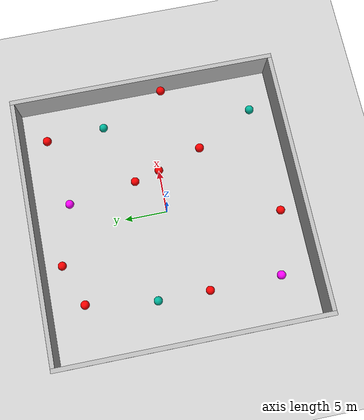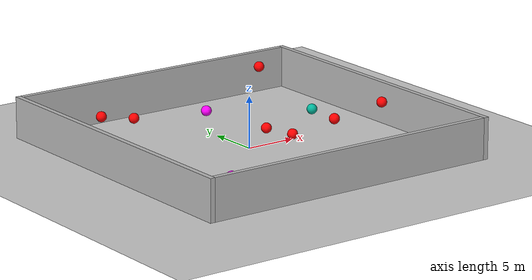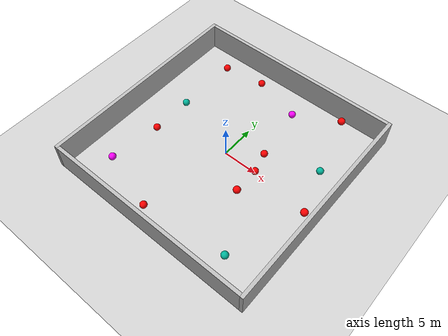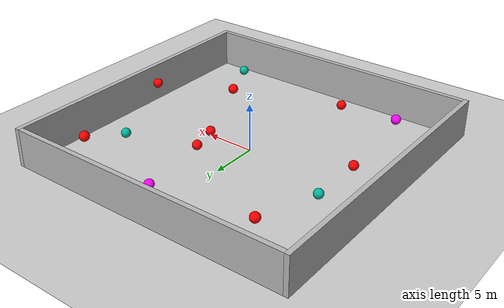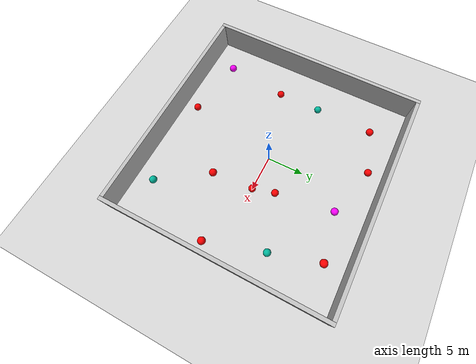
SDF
<sdf version="1.6">
 <world name="default">
  <model name="ground_plane">
   <static>1</static>
   <link name="link">
    <collision name="collision">
     <geometry><plane><normal>0 0 1</normal><size>100 100</size></plane></geometry>
     <surface><friction><ode><mu>100</mu><mu2>50</mu2></ode></friction></surface>
    </collision>
    <visual name="visual">
     <cast_shadows>0</cast_shadows>
     <geometry><plane><normal>0 0 1</normal><size>100 100</size></plane></geometry>
     <material>
      <script><uri>file://media/materials/scripts/gazebo.material</uri><name>Gazebo/Grey</name></script>
     </material>
    </visual>
   </link>
  </model>
  <light name="sun" type="directional">
   <pose>0 0 10 0 -0 0</pose>
   <diffuse>0.8 0.8 0.8 1</diffuse>
   <specular>0.1 0.1 0.1 1</specular>
   <attenuation>
    <range>1000</range>
    <constant>0.9</constant>
    <linear>0.01</linear>
    <quadratic>0.001</quadratic>
   </attenuation>
   <direction>-0.5 0.5 -1</direction>
  </light>
  <model name="north_wall">
   <pose>15.25 0 2 0 -0 0</pose>
   <static>1</static>
   <link name="body">
    <collision name="colN"><geometry><box><size>0.5 31 4</size></box></geometry></collision>
    <visual name="visual"><geometry><box><size>0.5 31 4</size></box></geometry></visual>
   </link>
  </model>
  <model name="south_wall">
   <pose>-15.25 0 2 0 -0 0</pose>
   <static>1</static>
   <link name="body">
    <collision name="colS"><geometry><box><size>0.5 31 4</size></box></geometry></collision>
    <visual name="visual"><geometry><box><size>0.5 31 4</size></box></geometry></visual>
   </link>
  </model>
  <model name="west_wall">
   <pose>0 15.25 2 0 -0 0</pose>
   <static>1</static>
   <link name="body">
    <collision name="colW"><geometry><box><size>30 0.5 4</size></box></geometry></collision>
    <visual name="visual"><geometry><box><size>30 0.5 4</size></box></geometry></visual>
   </link>
  </model>
  <model name="east_wall">
   <pose>0 -15.25 2 0 -0 0</pose>
   <static>1</static>
   <link name="body">
    <collision name="colE"><geometry><box><size>30 0.5 4</size></box></geometry></collision>
    <visual name="visual"><geometry><box><size>30 0.5 4</size></box></geometry></visual>
   </link>
  </model>
  <model name="Target_1">
   <link name="link">
    <inertial>
     <mass>1</mass>
     <inertia><ixx>0.1</ixx><ixy>0</ixy><ixz>0</ixz><iyy>0.1</iyy><iyz>0</iyz><izz>0.1</izz></inertia>
    </inertial>
    <gravity>0</gravity>
    <visual name="visual">
     <geometry><sphere><radius>0.5</radius></sphere></geometry>
     <material>
      <script><name>Gazebo/Grey</name><uri>file://media/materials/scripts/gazebo.material</uri></script>
      <ambient>1 0 0 1</ambient>
      <diffuse>1 0 0 1</diffuse>
      <specular>0.01 0.01 0.01 1</specular>
      <emissive>0 0 0 1</emissive>
      <shader type="vertex"><normal_map>__default__</normal_map></shader>
     </material>
    </visual>
    <collision name="collision">
     <geometry><sphere><radius>0.5</radius></sphere></geometry>
     <surface>
      <friction>
       <ode><mu>1</mu><mu2>1</mu2><fdir1>0 0 0</fdir1><slip1>0</slip1><slip2>0</slip2></ode>
       <torsional>
        <coefficient>1</coefficient>
        <patch_radius>0</patch_radius>
        <surface_radius>0</surface_radius>
        <use_patch_radius>1</use_patch_radius>
        <ode><slip>0</slip></ode>
       </torsional>
      </friction>
      <bounce><restitution_coefficient>0</restitution_coefficient><threshold>1e+06</threshold></bounce>
      <contact>
       <collide_without_contact>0</collide_without_contact>
       <collide_without_contact_bitmask>1</collide_without_contact_bitmask>
       <collide_bitmask>1</collide_bitmask>
       <ode>
        <soft_cfm>0</soft_cfm>
        <soft_erp>0.2</soft_erp>
        <kp>1e+13</kp>
        <kd>1</kd>
        <max_vel>0.01</max_vel>
        <min_depth>0</min_depth>
       </ode>
       <bullet>
        <split_impulse>1</split_impulse>
        <split_impulse_penetration_threshold>-0.01</split_impulse_penetration_threshold>
        <soft_cfm>0</soft_cfm>
        <soft_erp>0.2</soft_erp>
        <kp>1e+13</kp>
        <kd>1</kd>
       </bullet>
      </contact>
     </surface>
    </collision>
   </link>
   <static>0</static>
   <pose>5 0 0.5 0 -0 0</pose>
  </model>
  <model name="Target_2">
   <link name="link">
    <inertial>
     <mass>1</mass>
     <inertia><ixx>0.1</ixx><ixy>0</ixy><ixz>0</ixz><iyy>0.1</iyy><iyz>0</iyz><izz>0.1</izz></inertia>
    </inertial>
    <gravity>0</gravity>
    <visual name="visual">
     <geometry><sphere><radius>0.5</radius></sphere></geometry>
     <material>
      <script><name>Gazebo/Grey</name><uri>file://media/materials/scripts/gazebo.material</uri></script>
      <ambient>1 0 0 1</ambient>
      <diffuse>1 0 0 1</diffuse>
      <specular>0.01 0.01 0.01 1</specular>
      <emissive>0 0 0 1</emissive>
      <shader type="vertex"><normal_map>__default__</normal_map></shader>
     </material>
    </visual>
    <collision name="collision">
     <geometry><sphere><radius>0.5</radius></sphere></geometry>
     <surface>
      <friction>
       <ode><mu>1</mu><mu2>1</mu2><fdir1>0 0 0</fdir1><slip1>0</slip1><slip2>0</slip2></ode>
       <torsional>
        <coefficient>1</coefficient>
        <patch_radius>0</patch_radius>
        <surface_radius>0</surface_radius>
        <use_patch_radius>1</use_patch_radius>
        <ode><slip>0</slip></ode>
       </torsional>
      </friction>
      <bounce><restitution_coefficient>0</restitution_coefficient><threshold>1e+06</threshold></bounce>
      <contact>
       <collide_without_contact>0</collide_without_contact>
       <collide_without_contact_bitmask>1</collide_without_contact_bitmask>
       <collide_bitmask>1</collide_bitmask>
       <ode>
        <soft_cfm>0</soft_cfm>
        <soft_erp>0.2</soft_erp>
        <kp>1e+13</kp>
        <kd>1</kd>
        <max_vel>0.01</max_vel>
        <min_depth>0</min_depth>
       </ode>
       <bullet>
        <split_impulse>1</split_impulse>
        <split_impulse_penetration_threshold>-0.01</split_impulse_penetration_threshold>
        <soft_cfm>0</soft_cfm>
        <soft_erp>0.2</soft_erp>
        <kp>1e+13</kp>
        <kd>1</kd>
       </bullet>
      </contact>
     </surface>
    </collision>
   </link>
   <static>0</static>
   <pose>-4 13 0.5 0 -0 0</pose>
  </model>
  <model name="Target_3">
   <link name="link">
    <inertial>
     <mass>1</mass>
     <inertia><ixx>0.1</ixx><ixy>0</ixy><ixz>0</ixz><iyy>0.1</iyy><iyz>0</iyz><izz>0.1</izz></inertia>
    </inertial>
    <gravity>0</gravity>
    <visual name="visual">
     <geometry><sphere><radius>0.5</radius></sphere></geometry>
     <material>
      <script><name>Gazebo/Grey</name><uri>file://media/materials/scripts/gazebo.material</uri></script>
      <ambient>1 0 0 1</ambient>
      <diffuse>1 0 0 1</diffuse>
      <specular>0.01 0.01 0.01 1</specular>
      <emissive>0 0 0 1</emissive>
      <shader type="vertex"><normal_map>__default__</normal_map></shader>
     </material>
    </visual>
    <collision name="collision">
     <geometry><sphere><radius>0.5</radius></sphere></geometry>
     <surface>
      <friction>
       <ode><mu>1</mu><mu2>1</mu2><fdir1>0 0 0</fdir1><slip1>0</slip1><slip2>0</slip2></ode>
       <torsional>
        <coefficient>1</coefficient>
        <patch_radius>0</patch_radius>
        <surface_radius>0</surface_radius>
        <use_patch_radius>1</use_patch_radius>
        <ode><slip>0</slip></ode>
       </torsional>
      </friction>
      <bounce><restitution_coefficient>0</restitution_coefficient><threshold>1e+06</threshold></bounce>
      <contact>
       <collide_without_contact>0</collide_without_contact>
       <collide_without_contact_bitmask>1</collide_without_contact_bitmask>
       <collide_bitmask>1</collide_bitmask>
       <ode>
        <soft_cfm>0</soft_cfm>
        <soft_erp>0.2</soft_erp>
        <kp>1e+13</kp>
        <kd>1</kd>
        <max_vel>0.01</max_vel>
        <min_depth>0</min_depth>
       </ode>
       <bullet>
        <split_impulse>1</split_impulse>
        <split_impulse_penetration_threshold>-0.01</split_impulse_penetration_threshold>
        <soft_cfm>0</soft_cfm>
        <soft_erp>0.2</soft_erp>
        <kp>1e+13</kp>
        <kd>1</kd>
       </bullet>
      </contact>
     </surface>
    </collision>
   </link>
   <static>0</static>
   <pose>10 12 3.5 0 -0 0</pose>
  </model>
  <model name="Target_4">
   <link name="link">
    <inertial>
     <mass>1</mass>
     <inertia><ixx>0.1</ixx><ixy>0</ixy><ixz>0</ixz><iyy>0.1</iyy><iyz>0</iyz><izz>0.1</izz></inertia>
    </inertial>
    <gravity>0</gravity>
    <visual name="visual">
     <geometry><sphere><radius>0.5</radius></sphere></geometry>
     <material>
      <script><name>Gazebo/Grey</name><uri>file://media/materials/scripts/gazebo.material</uri></script>
      <ambient>1 0 0 1</ambient>
      <diffuse>1 0 0 1</diffuse>
      <specular>0.01 0.01 0.01 1</specular>
      <emissive>0 0 0 1</emissive>
      <shader type="vertex"><normal_map>__default__</normal_map></shader>
     </material>
    </visual>
    <collision name="collision">
     <geometry><sphere><radius>0.5</radius></sphere></geometry>
     <surface>
      <friction>
       <ode><mu>1</mu><mu2>1</mu2><fdir1>0 0 0</fdir1><slip1>0</slip1><slip2>0</slip2></ode>
       <torsional>
        <coefficient>1</coefficient>
        <patch_radius>0</patch_radius>
        <surface_radius>0</surface_radius>
        <use_patch_radius>1</use_patch_radius>
        <ode><slip>0</slip></ode>
       </torsional>
      </friction>
      <bounce><restitution_coefficient>0</restitution_coefficient><threshold>1e+06</threshold></bounce>
      <contact>
       <collide_without_contact>0</collide_without_contact>
       <collide_without_contact_bitmask>1</collide_without_contact_bitmask>
       <collide_bitmask>1</collide_bitmask>
       <ode>
        <soft_cfm>0</soft_cfm>
        <soft_erp>0.2</soft_erp>
        <kp>1e+13</kp>
        <kd>1</kd>
        <max_vel>0.01</max_vel>
        <min_depth>0</min_depth>
       </ode>
       <bullet>
        <split_impulse>1</split_impulse>
        <split_impulse_penetration_threshold>-0.01</split_impulse_penetration_threshold>
        <soft_cfm>0</soft_cfm>
        <soft_erp>0.2</soft_erp>
        <kp>1e+13</kp>
        <kd>1</kd>
       </bullet>
      </contact>
     </surface>
    </collision>
   </link>
   <static>0</static>
   <pose>6 -5 3 0 -0 0</pose>
  </model>
  <model name="Target_5">
   <link name="link">
    <inertial>
     <mass>1</mass>
     <inertia><ixx>0.1</ixx><ixy>0</ixy><ixz>0</ixz><iyy>0.1</iyy><iyz>0</iyz><izz>0.1</izz></inertia>
    </inertial>
    <gravity>0</gravity>
    <visual name="visual">
     <geometry><sphere><radius>0.5</radius></sphere></geometry>
     <material>
      <script><name>Gazebo/Grey</name><uri>file://media/materials/scripts/gazebo.material</uri></script>
      <ambient>1 0 0 1</ambient>
      <diffuse>1 0 0 1</diffuse>
      <specular>0.01 0.01 0.01 1</specular>
      <emissive>0 0 0 1</emissive>
      <shader type="vertex"><normal_map>__default__</normal_map></shader>
     </material>
    </visual>
    <collision name="collision">
     <geometry><sphere><radius>0.5</radius></sphere></geometry>
     <surface>
      <friction>
       <ode><mu>1</mu><mu2>1</mu2><fdir1>0 0 0</fdir1><slip1>0</slip1><slip2>0</slip2></ode>
       <torsional>
        <coefficient>1</coefficient>
        <patch_radius>0</patch_radius>
        <surface_radius>0</surface_radius>
        <use_patch_radius>1</use_patch_radius>
        <ode><slip>0</slip></ode>
       </torsional>
      </friction>
      <bounce><restitution_coefficient>0</restitution_coefficient><threshold>1e+06</threshold></bounce>
      <contact>
       <collide_without_contact>0</collide_without_contact>
       <collide_without_contact_bitmask>1</collide_without_contact_bitmask>
       <collide_bitmask>1</collide_bitmask>
       <ode>
        <soft_cfm>0</soft_cfm>
        <soft_erp>0.2</soft_erp>
        <kp>1e+13</kp>
        <kd>1</kd>
        <max_vel>0.01</max_vel>
        <min_depth>0</min_depth>
       </ode>
       <bullet>
        <split_impulse>1</split_impulse>
        <split_impulse_penetration_threshold>-0.01</split_impulse_penetration_threshold>
        <soft_cfm>0</soft_cfm>
        <soft_erp>0.2</soft_erp>
        <kp>1e+13</kp>
        <kd>1</kd>
       </bullet>
      </contact>
     </surface>
    </collision>
   </link>
   <static>0</static>
   <pose>-10 -3 0.5 0 -0 0</pose>
  </model>
  <model name="Target_6">
   <link name="link">
    <inertial>
     <mass>1</mass>
     <inertia><ixx>0.1</ixx><ixy>0</ixy><ixz>0</ixz><iyy>0.1</iyy><iyz>0</iyz><izz>0.1</izz></inertia>
    </inertial>
    <gravity>0</gravity>
    <visual name="visual">
     <geometry><sphere><radius>0.5</radius></sphere></geometry>
     <material>
      <script><name>Gazebo/Grey</name><uri>file://media/materials/scripts/gazebo.material</uri></script>
      <ambient>1 0 0 1</ambient>
      <diffuse>1 0 0 1</diffuse>
      <specular>0.01 0.01 0.01 1</specular>
      <emissive>0 0 0 1</emissive>
      <shader type="vertex"><normal_map>__default__</normal_map></shader>
     </material>
    </visual>
    <collision name="collision">
     <geometry><sphere><radius>0.5</radius></sphere></geometry>
     <surface>
      <friction>
       <ode><mu>1</mu><mu2>1</mu2><fdir1>0 0 0</fdir1><slip1>0</slip1><slip2>0</slip2></ode>
       <torsional>
        <coefficient>1</coefficient>
        <patch_radius>0</patch_radius>
        <surface_radius>0</surface_radius>
        <use_patch_radius>1</use_patch_radius>
        <ode><slip>0</slip></ode>
       </torsional>
      </friction>
      <bounce><restitution_coefficient>0</restitution_coefficient><threshold>1e+06</threshold></bounce>
      <contact>
       <collide_without_contact>0</collide_without_contact>
       <collide_without_contact_bitmask>1</collide_without_contact_bitmask>
       <collide_bitmask>1</collide_bitmask>
       <ode>
        <soft_cfm>0</soft_cfm>
        <soft_erp>0.2</soft_erp>
        <kp>1e+13</kp>
        <kd>1</kd>
        <max_vel>0.01</max_vel>
        <min_depth>0</min_depth>
       </ode>
       <bullet>
        <split_impulse>1</split_impulse>
        <split_impulse_penetration_threshold>-0.01</split_impulse_penetration_threshold>
        <soft_cfm>0</soft_cfm>
        <soft_erp>0.2</soft_erp>
        <kp>1e+13</kp>
        <kd>1</kd>
       </bullet>
      </contact>
     </surface>
    </collision>
   </link>
   <static>0</static>
   <pose>14 -2 2.5 0 -0 0</pose>
  </model>
  <gravity>0 0 -9.8</gravity>
  <magnetic_field>6e-06 2.3e-05 -4.2e-05</magnetic_field>
  <atmosphere type="adiabatic"/>
  <physics name="default_physics" default="0" type="ode">
   <max_step_size>0.001</max_step_size>
   <real_time_factor>1</real_time_factor>
   <real_time_update_rate>1000</real_time_update_rate>
  </physics>
  <scene><ambient>0.4 0.4 0.4 1</ambient><background>0.7 0.7 0.7 1</background><shadows>1</shadows></scene>
  <spherical_coordinates>
   <surface_model>EARTH_WGS84</surface_model>
   <latitude_deg>0</latitude_deg>
   <longitude_deg>0</longitude_deg>
   <elevation>0</elevation>
   <heading_deg>0</heading_deg>
  </spherical_coordinates>
  <model name="unit_sphere_Green">
   <link name="link">
    <inertial>
     <mass>1</mass>
     <inertia><ixx>0.1</ixx><ixy>0</ixy><ixz>0</ixz><iyy>0.1</iyy><iyz>0</iyz><izz>0.1</izz></inertia>
    </inertial>
    <visual name="visual">
     <geometry><sphere><radius>0.5</radius></sphere></geometry>
     <material>
      <script><name>Gazebo/Grey</name><uri>file://media/materials/scripts/gazebo.material</uri></script>
      <ambient>0 1 0 1</ambient>
      <diffuse>0 0.7 0.6 1</diffuse>
      <specular>0.01 0.01 0.01 1</specular>
      <emissive>0 0 0 1</emissive>
      <shader type="vertex"><normal_map>__default__</normal_map></shader>
     </material>
    </visual>
    <collision name="collision">
     <geometry><sphere><radius>0.5</radius></sphere></geometry>
     <surface>
      <friction>
       <ode><mu>1</mu><mu2>1</mu2><fdir1>0 0 0</fdir1><slip1>0</slip1><slip2>0</slip2></ode>
       <torsional>
        <coefficient>1</coefficient>
        <patch_radius>0</patch_radius>
        <surface_radius>0</surface_radius>
        <use_patch_radius>1</use_patch_radius>
        <ode><slip>0</slip></ode>
       </torsional>
      </friction>
      <bounce><restitution_coefficient>0</restitution_coefficient><threshold>1e+06</threshold></bounce>
      <contact>
       <collide_without_contact>0</collide_without_contact>
       <collide_without_contact_bitmask>1</collide_without_contact_bitmask>
       <collide_bitmask>1</collide_bitmask>
       <ode>
        <soft_cfm>0</soft_cfm>
        <soft_erp>0.2</soft_erp>
        <kp>1e+13</kp>
        <kd>1</kd>
        <max_vel>0.01</max_vel>
        <min_depth>0</min_depth>
       </ode>
       <bullet>
        <split_impulse>1</split_impulse>
        <split_impulse_penetration_threshold>-0.01</split_impulse_penetration_threshold>
        <soft_cfm>0</soft_cfm>
        <soft_erp>0.2</soft_erp>
        <kp>1e+13</kp>
        <kd>1</kd>
       </bullet>
      </contact>
     </surface>
    </collision>
   </link>
   <static>0</static>
   <pose>11.5 5.5 0.5 0 -0 0</pose>
  </model>
  <model name="unit_sphere_Green_0">
   <link name="unit_sphere_Green_0::link">
    <inertial>
     <mass>1</mass>
     <inertia><ixx>0.1</ixx><ixy>0</ixy><ixz>0</ixz><iyy>0.1</iyy><iyz>0</iyz><izz>0.1</izz></inertia>
    </inertial>
    <gravity>0</gravity>
    <visual name="visual">
     <geometry><sphere><radius>0.5</radius></sphere></geometry>
     <material>
      <script><name>Gazebo/Grey</name><uri>file://media/materials/scripts/gazebo.material</uri></script>
      <ambient>0 1 0 1</ambient>
      <diffuse>0 0.7 0.6 1</diffuse>
      <specular>0.01 0.01 0.01 1</specular>
      <emissive>0 0 0 1</emissive>
      <shader type="vertex"><normal_map>__default__</normal_map></shader>
     </material>
    </visual>
    <collision name="collision">
     <geometry><sphere><radius>0.5</radius></sphere></geometry>
     <surface>
      <friction>
       <ode><mu>1</mu><mu2>1</mu2><fdir1>0 0 0</fdir1><slip1>0</slip1><slip2>0</slip2></ode>
       <torsional>
        <coefficient>1</coefficient>
        <patch_radius>0</patch_radius>
        <surface_radius>0</surface_radius>
        <use_patch_radius>1</use_patch_radius>
        <ode><slip>0</slip></ode>
       </torsional>
      </friction>
      <bounce><restitution_coefficient>0</restitution_coefficient><threshold>1e+06</threshold></bounce>
      <contact>
       <collide_without_contact>0</collide_without_contact>
       <collide_without_contact_bitmask>1</collide_without_contact_bitmask>
       <collide_bitmask>1</collide_bitmask>
       <ode>
        <soft_cfm>0</soft_cfm>
        <soft_erp>0.2</soft_erp>
        <kp>1e+13</kp>
        <kd>1</kd>
        <max_vel>0.01</max_vel>
        <min_depth>0</min_depth>
       </ode>
       <bullet>
        <split_impulse>1</split_impulse>
        <split_impulse_penetration_threshold>-0.01</split_impulse_penetration_threshold>
        <soft_cfm>0</soft_cfm>
        <soft_erp>0.2</soft_erp>
        <kp>1e+13</kp>
        <kd>1</kd>
       </bullet>
      </contact>
     </surface>
    </collision>
   </link>
   <static>0</static>
   <pose>10 -12 1.5 0 -0 0</pose>
  </model>
  <model name="unit_sphere_Green_1">
   <link name="link">
    <inertial>
     <mass>1</mass>
     <inertia><ixx>0.1</ixx><ixy>0</ixy><ixz>0</ixz><iyy>0.1</iyy><iyz>0</iyz><izz>0.1</izz></inertia>
    </inertial>
    <visual name="visual">
     <geometry><sphere><radius>0.5</radius></sphere></geometry>
     <material>
      <script><name>Gazebo/Grey</name><uri>file://media/materials/scripts/gazebo.material</uri></script>
      <ambient>0 1 0 1</ambient>
      <diffuse>0 0.7 0.6 1</diffuse>
      <specular>0.01 0.01 0.01 1</specular>
      <emissive>0 0 0 1</emissive>
      <shader type="vertex"><normal_map>__default__</normal_map></shader>
     </material>
    </visual>
    <collision name="collision">
     <geometry><sphere><radius>0.5</radius></sphere></geometry>
     <surface>
      <friction>
       <ode><mu>1</mu><mu2>1</mu2><fdir1>0 0 0</fdir1><slip1>0</slip1><slip2>0</slip2></ode>
       <torsional>
        <coefficient>1</coefficient>
        <patch_radius>0</patch_radius>
        <surface_radius>0</surface_radius>
        <use_patch_radius>1</use_patch_radius>
        <ode><slip>0</slip></ode>
       </torsional>
      </friction>
      <bounce><restitution_coefficient>0</restitution_coefficient><threshold>1e+06</threshold></bounce>
      <contact>
       <collide_without_contact>0</collide_without_contact>
       <collide_without_contact_bitmask>1</collide_without_contact_bitmask>
       <collide_bitmask>1</collide_bitmask>
       <ode>
        <soft_cfm>0</soft_cfm>
        <soft_erp>0.2</soft_erp>
        <kp>1e+13</kp>
        <kd>1</kd>
        <max_vel>0.01</max_vel>
        <min_depth>0</min_depth>
       </ode>
       <bullet>
        <split_impulse>1</split_impulse>
        <split_impulse_penetration_threshold>-0.01</split_impulse_penetration_threshold>
        <soft_cfm>0</soft_cfm>
        <soft_erp>0.2</soft_erp>
        <kp>1e+13</kp>
        <kd>1</kd>
       </bullet>
      </contact>
     </surface>
    </collision>
   </link>
   <static>0</static>
   <pose>-10 3 0.5 0 -0 0</pose>
  </model>
  <model name="unit_sphere_Blue">
   <link name="unit_sphere_Blue::link">
    <inertial>
     <mass>1</mass>
     <inertia><ixx>0.1</ixx><ixy>0</ixy><ixz>0</ixz><iyy>0.1</iyy><iyz>0</iyz><izz>0.1</izz></inertia>
    </inertial>
    <gravity>0</gravity>
    <visual name="ModelPreview_7::link::visual_1">
     <geometry><sphere><radius>0.5</radius></sphere></geometry>
     <material>
      <script><name>Gazebo/Grey</name><uri>file://media/materials/scripts/gazebo.material</uri></script>
      <ambient>1 0 1 1</ambient>
      <diffuse>1 0 0 1</diffuse>
      <specular>0.01 0.01 0.01 1</specular>
      <emissive>0 0 0 1</emissive>
      <shader type="vertex"><normal_map>__default__</normal_map></shader>
     </material>
    </visual>
    <visual name="visual">
     <geometry><sphere><radius>0.5</radius></sphere></geometry>
     <material>
      <script><name>Gazebo/Grey</name><uri>file://media/materials/scripts/gazebo.material</uri></script>
      <ambient>0 0 1 1</ambient>
      <diffuse>0 0 1 1</diffuse>
      <specular>0.01 0.01 0.01 1</specular>
      <emissive>0 0 0 1</emissive>
      <shader type="vertex"><normal_map>__default__</normal_map></shader>
     </material>
    </visual>
    <visual name="ModelPreview_7::link::visual_2">
     <geometry><sphere><radius>0.5</radius></sphere></geometry>
     <material>
      <script><name>Gazebo/Grey</name><uri>file://media/materials/scripts/gazebo.material</uri></script>
      <ambient>0 0 1 1</ambient>
      <diffuse>0 0 0 1</diffuse>
      <specular>0.01 0.01 0.01 1</specular>
      <emissive>0 0 0 1</emissive>
      <shader type="vertex"><normal_map>__default__</normal_map></shader>
     </material>
    </visual>
    <collision name="collision">
     <geometry><sphere><radius>0.5</radius></sphere></geometry>
     <surface>
      <friction>
       <ode><mu>1</mu><mu2>1</mu2><fdir1>0 0 0</fdir1><slip1>0</slip1><slip2>0</slip2></ode>
       <torsional>
        <coefficient>1</coefficient>
        <patch_radius>0</patch_radius>
        <surface_radius>0</surface_radius>
        <use_patch_radius>1</use_patch_radius>
        <ode><slip>0</slip></ode>
       </torsional>
      </friction>
      <bounce><restitution_coefficient>0</restitution_coefficient><threshold>1e+06</threshold></bounce>
      <contact>
       <collide_without_contact>0</collide_without_contact>
       <collide_without_contact_bitmask>1</collide_without_contact_bitmask>
       <collide_bitmask>1</collide_bitmask>
       <ode>
        <soft_cfm>0</soft_cfm>
        <soft_erp>0.2</soft_erp>
        <kp>1e+13</kp>
        <kd>1</kd>
        <max_vel>0.01</max_vel>
        <min_depth>0</min_depth>
       </ode>
       <bullet>
        <split_impulse>1</split_impulse>
        <split_impulse_penetration_threshold>-0.01</split_impulse_penetration_threshold>
        <soft_cfm>0</soft_cfm>
        <soft_erp>0.2</soft_erp>
        <kp>1e+13</kp>
        <kd>1</kd>
       </bullet>
      </contact>
     </surface>
    </collision>
   </link>
   <static>0</static>
   <pose>-9 11 2 0 -0 0</pose>
  </model>
  <model name="unit_sphere_Blue_0">
   <link name="link">
    <inertial>
     <mass>1</mass>
     <inertia><ixx>0.1</ixx><ixy>0</ixy><ixz>0</ixz><iyy>0.1</iyy><iyz>0</iyz><izz>0.1</izz></inertia>
    </inertial>
    <visual name="ModelPreview_7::link::visual_1">
     <geometry><sphere><radius>0.5</radius></sphere></geometry>
     <material>
      <script><name>Gazebo/Grey</name><uri>file://media/materials/scripts/gazebo.material</uri></script>
      <ambient>1 0 1 1</ambient>
      <diffuse>1 0 0 1</diffuse>
      <specular>0.01 0.01 0.01 1</specular>
      <emissive>0 0 0 1</emissive>
      <shader type="vertex"><normal_map>__default__</normal_map></shader>
     </material>
    </visual>
    <visual name="visual">
     <geometry><sphere><radius>0.5</radius></sphere></geometry>
     <material>
      <script><name>Gazebo/Grey</name><uri>file://media/materials/scripts/gazebo.material</uri></script>
      <ambient>0 0 1 1</ambient>
      <diffuse>0 0 1 1</diffuse>
      <specular>0.01 0.01 0.01 1</specular>
      <emissive>0 0 0 1</emissive>
      <shader type="vertex"><normal_map>__default__</normal_map></shader>
     </material>
    </visual>
    <visual name="ModelPreview_7::link::visual_2">
     <geometry><sphere><radius>0.5</radius></sphere></geometry>
     <material>
      <script><name>Gazebo/Grey</name><uri>file://media/materials/scripts/gazebo.material</uri></script>
      <ambient>0 0 1 1</ambient>
      <diffuse>0 0 0 1</diffuse>
      <specular>0.01 0.01 0.01 1</specular>
      <emissive>0 0 0 1</emissive>
      <shader type="vertex"><normal_map>__default__</normal_map></shader>
     </material>
    </visual>
    <collision name="collision">
     <geometry><sphere><radius>0.5</radius></sphere></geometry>
     <surface>
      <friction>
       <ode><mu>1</mu><mu2>1</mu2><fdir1>0 0 0</fdir1><slip1>0</slip1><slip2>0</slip2></ode>
       <torsional>
        <coefficient>1</coefficient>
        <patch_radius>0</patch_radius>
        <surface_radius>0</surface_radius>
        <use_patch_radius>1</use_patch_radius>
        <ode><slip>0</slip></ode>
       </torsional>
      </friction>
      <bounce><restitution_coefficient>0</restitution_coefficient><threshold>1e+06</threshold></bounce>
      <contact>
       <collide_without_contact>0</collide_without_contact>
       <collide_without_contact_bitmask>1</collide_without_contact_bitmask>
       <collide_bitmask>1</collide_bitmask>
       <ode>
        <soft_cfm>0</soft_cfm>
        <soft_erp>0.2</soft_erp>
        <kp>1e+13</kp>
        <kd>1</kd>
        <max_vel>0.01</max_vel>
        <min_depth>0</min_depth>
       </ode>
       <bullet>
        <split_impulse>1</split_impulse>
        <split_impulse_penetration_threshold>-0.01</split_impulse_penetration_threshold>
        <soft_cfm>0</soft_cfm>
        <soft_erp>0.2</soft_erp>
        <kp>1e+13</kp>
        <kd>1</kd>
       </bullet>
      </contact>
     </surface>
    </collision>
   </link>
   <static>0</static>
   <pose>4.2 3 0.5 0 -0 0</pose>
  </model>
  <model name="unit_sphere_Blue_1">
   <link name="link">
    <inertial>
     <mass>1</mass>
     <inertia><ixx>0.1</ixx><ixy>0</ixy><ixz>0</ixz><iyy>0.1</iyy><iyz>0</iyz><izz>0.1</izz></inertia>
    </inertial>
    <visual name="ModelPreview_7::link::visual_1">
     <geometry><sphere><radius>0.5</radius></sphere></geometry>
     <material>
      <script><name>Gazebo/Grey</name><uri>file://media/materials/scripts/gazebo.material</uri></script>
      <ambient>1 0 1 1</ambient>
      <diffuse>1 0 0 1</diffuse>
      <specular>0.01 0.01 0.01 1</specular>
      <emissive>0 0 0 1</emissive>
      <shader type="vertex"><normal_map>__default__</normal_map></shader>
     </material>
    </visual>
    <visual name="visual">
     <geometry><sphere><radius>0.5</radius></sphere></geometry>
     <material>
      <script><name>Gazebo/Grey</name><uri>file://media/materials/scripts/gazebo.material</uri></script>
      <ambient>0 0 1 1</ambient>
      <diffuse>0 0 1 1</diffuse>
      <specular>0.01 0.01 0.01 1</specular>
      <emissive>0 0 0 1</emissive>
      <shader type="vertex"><normal_map>__default__</normal_map></shader>
     </material>
    </visual>
    <visual name="ModelPreview_7::link::visual_2">
     <geometry><sphere><radius>0.5</radius></sphere></geometry>
     <material>
      <script><name>Gazebo/Grey</name><uri>file://media/materials/scripts/gazebo.material</uri></script>
      <ambient>0 0 1 1</ambient>
      <diffuse>0 0 0 1</diffuse>
      <specular>0.01 0.01 0.01 1</specular>
      <emissive>0 0 0 1</emissive>
      <shader type="vertex"><normal_map>__default__</normal_map></shader>
     </material>
    </visual>
    <collision name="collision">
     <geometry><sphere><radius>0.5</radius></sphere></geometry>
     <surface>
      <friction>
       <ode><mu>1</mu><mu2>1</mu2><fdir1>0 0 0</fdir1><slip1>0</slip1><slip2>0</slip2></ode>
       <torsional>
        <coefficient>1</coefficient>
        <patch_radius>0</patch_radius>
        <surface_radius>0</surface_radius>
        <use_patch_radius>1</use_patch_radius>
        <ode><slip>0</slip></ode>
       </torsional>
      </friction>
      <bounce><restitution_coefficient>0</restitution_coefficient><threshold>1e+06</threshold></bounce>
      <contact>
       <collide_without_contact>0</collide_without_contact>
       <collide_without_contact_bitmask>1</collide_without_contact_bitmask>
       <collide_bitmask>1</collide_bitmask>
       <ode>
        <soft_cfm>0</soft_cfm>
        <soft_erp>0.2</soft_erp>
        <kp>1e+13</kp>
        <kd>1</kd>
        <max_vel>0.01</max_vel>
        <min_depth>0</min_depth>
       </ode>
       <bullet>
        <split_impulse>1</split_impulse>
        <split_impulse_penetration_threshold>-0.01</split_impulse_penetration_threshold>
        <soft_cfm>0</soft_cfm>
        <soft_erp>0.2</soft_erp>
        <kp>1e+13</kp>
        <kd>1</kd>
       </bullet>
      </contact>
     </surface>
    </collision>
   </link>
   <static>0</static>
   <pose>-2.5 -13 0.5 0 -0 0</pose>
  </model>
  <model name="unit_sphere_Purple_0">
   <link name="unit_sphere_Purple_0::link">
    <inertial>
     <mass>1</mass>
     <inertia><ixx>0.1</ixx><ixy>0</ixy><ixz>0</ixz><iyy>0.1</iyy><iyz>0</iyz><izz>0.1</izz></inertia>
    </inertial>
    <gravity>0</gravity>
    <visual name="ModelPreview_7::link::visual_1">
     <geometry><sphere><radius>0.5</radius></sphere></geometry>
     <material>
      <script><name>Gazebo/Grey</name><uri>file://media/materials/scripts/gazebo.material</uri></script>
      <ambient>1 0 1 1</ambient>
      <diffuse>1 0 1 1</diffuse>
      <specular>0.01 0.01 0.01 1</specular>
      <emissive>0 0 0 1</emissive>
      <shader type="vertex"><normal_map>__default__</normal_map></shader>
     </material>
    </visual>
    <visual name="visual">
     <geometry><sphere><radius>0.5</radius></sphere></geometry>
     <material>
      <script><name>Gazebo/Grey</name><uri>file://media/materials/scripts/gazebo.material</uri></script>
      <ambient>1 0 1 1</ambient>
      <diffuse>1 0 1 1</diffuse>
      <specular>0.01 0.01 0.01 1</specular>
      <emissive>0 0 0 1</emissive>
      <shader type="vertex"><normal_map>__default__</normal_map></shader>
     </material>
    </visual>
    <visual name="ModelPreview_7::link::visual_2">
     <geometry><sphere><radius>0.5</radius></sphere></geometry>
     <material>
      <script><name>Gazebo/Grey</name><uri>file://media/materials/scripts/gazebo.material</uri></script>
      <ambient>1 0 1 1</ambient>
      <diffuse>1 0 0 1</diffuse>
      <specular>0.01 0.01 0.01 1</specular>
      <emissive>0 0 0 1</emissive>
      <shader type="vertex"><normal_map>__default__</normal_map></shader>
     </material>
    </visual>
    <collision name="collision">
     <geometry><sphere><radius>0.5</radius></sphere></geometry>
     <surface>
      <friction>
       <ode><mu>1</mu><mu2>1</mu2><fdir1>0 0 0</fdir1><slip1>0</slip1><slip2>0</slip2></ode>
       <torsional>
        <coefficient>1</coefficient>
        <patch_radius>0</patch_radius>
        <surface_radius>0</surface_radius>
        <use_patch_radius>1</use_patch_radius>
        <ode><slip>0</slip></ode>
       </torsional>
      </friction>
      <bounce><restitution_coefficient>0</restitution_coefficient><threshold>1e+06</threshold></bounce>
      <contact>
       <collide_without_contact>0</collide_without_contact>
       <collide_without_contact_bitmask>1</collide_without_contact_bitmask>
       <collide_bitmask>1</collide_bitmask>
       <ode>
        <soft_cfm>0</soft_cfm>
        <soft_erp>0.2</soft_erp>
        <kp>1e+13</kp>
        <kd>1</kd>
        <max_vel>0.01</max_vel>
        <min_depth>0</min_depth>
       </ode>
       <bullet>
        <split_impulse>1</split_impulse>
        <split_impulse_penetration_threshold>-0.01</split_impulse_penetration_threshold>
        <soft_cfm>0</soft_cfm>
        <soft_erp>0.2</soft_erp>
        <kp>1e+13</kp>
        <kd>1</kd>
       </bullet>
      </contact>
     </surface>
    </collision>
   </link>
   <static>0</static>
   <pose>-10 -11 2 0 -0 0</pose>
  </model>
  <model name="unit_sphere_Purple_0_0">
   <link name="link">
    <inertial>
     <mass>1</mass>
     <inertia><ixx>0.1</ixx><ixy>0</ixy><ixz>0</ixz><iyy>0.1</iyy><iyz>0</iyz><izz>0.1</izz></inertia>
    </inertial>
    <visual name="ModelPreview_7::link::visual_1">
     <geometry><sphere><radius>0.5</radius></sphere></geometry>
     <material>
      <script><name>Gazebo/Grey</name><uri>file://media/materials/scripts/gazebo.material</uri></script>
      <ambient>1 0 1 1</ambient>
      <diffuse>1 0 1 1</diffuse>
      <specular>0.01 0.01 0.01 1</specular>
      <emissive>0 0 0 1</emissive>
      <shader type="vertex"><normal_map>__default__</normal_map></shader>
     </material>
    </visual>
    <visual name="visual">
     <geometry><sphere><radius>0.5</radius></sphere></geometry>
     <material>
      <script><name>Gazebo/Grey</name><uri>file://media/materials/scripts/gazebo.material</uri></script>
      <ambient>1 0 1 1</ambient>
      <diffuse>1 0 1 1</diffuse>
      <specular>0.01 0.01 0.01 1</specular>
      <emissive>0 0 0 1</emissive>
      <shader type="vertex"><normal_map>__default__</normal_map></shader>
     </material>
    </visual>
    <visual name="ModelPreview_7::link::visual_2">
     <geometry><sphere><radius>0.5</radius></sphere></geometry>
     <material>
      <script><name>Gazebo/Grey</name><uri>file://media/materials/scripts/gazebo.material</uri></script>
      <ambient>1 0 1 1</ambient>
      <diffuse>1 0 0 1</diffuse>
      <specular>0.01 0.01 0.01 1</specular>
      <emissive>0 0 0 1</emissive>
      <shader type="vertex"><normal_map>__default__</normal_map></shader>
     </material>
    </visual>
    <collision name="collision">
     <geometry><sphere><radius>0.5</radius></sphere></geometry>
     <surface>
      <friction>
       <ode><mu>1</mu><mu2>1</mu2><fdir1>0 0 0</fdir1><slip1>0</slip1><slip2>0</slip2></ode>
       <torsional>
        <coefficient>1</coefficient>
        <patch_radius>0</patch_radius>
        <surface_radius>0</surface_radius>
        <use_patch_radius>1</use_patch_radius>
        <ode><slip>0</slip></ode>
       </torsional>
      </friction>
      <bounce><restitution_coefficient>0</restitution_coefficient><threshold>1e+06</threshold></bounce>
      <contact>
       <collide_without_contact>0</collide_without_contact>
       <collide_without_contact_bitmask>1</collide_without_contact_bitmask>
       <collide_bitmask>1</collide_bitmask>
       <ode>
        <soft_cfm>0</soft_cfm>
        <soft_erp>0.2</soft_erp>
        <kp>1e+13</kp>
        <kd>1</kd>
        <max_vel>0.01</max_vel>
        <min_depth>0</min_depth>
       </ode>
       <bullet>
        <split_impulse>1</split_impulse>
        <split_impulse_penetration_threshold>-0.01</split_impulse_penetration_threshold>
        <soft_cfm>0</soft_cfm>
        <soft_erp>0.2</soft_erp>
        <kp>1e+13</kp>
        <kd>1</kd>
       </bullet>
      </contact>
     </surface>
    </collision>
   </link>
   <static>0</static>
   <pose>3 11 0.5 0 -0 0</pose>
  </model>
 </world>
</sdf>
